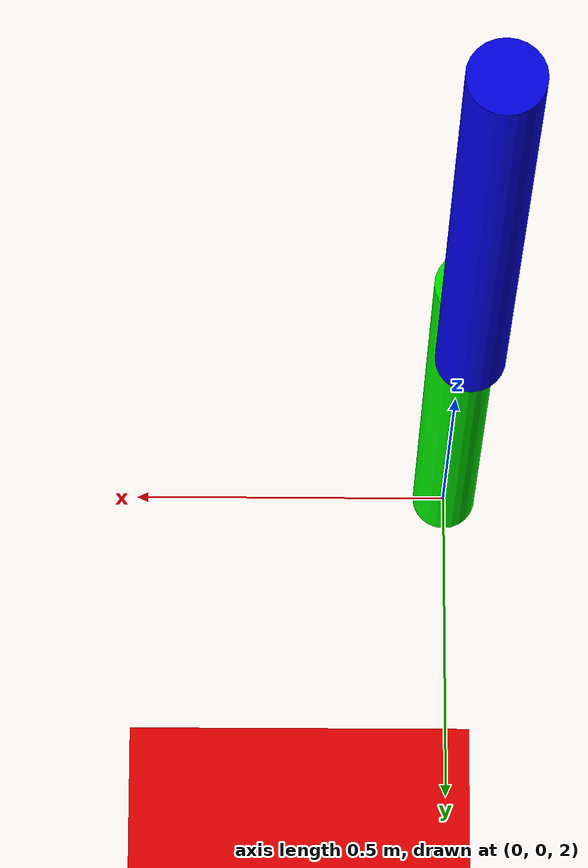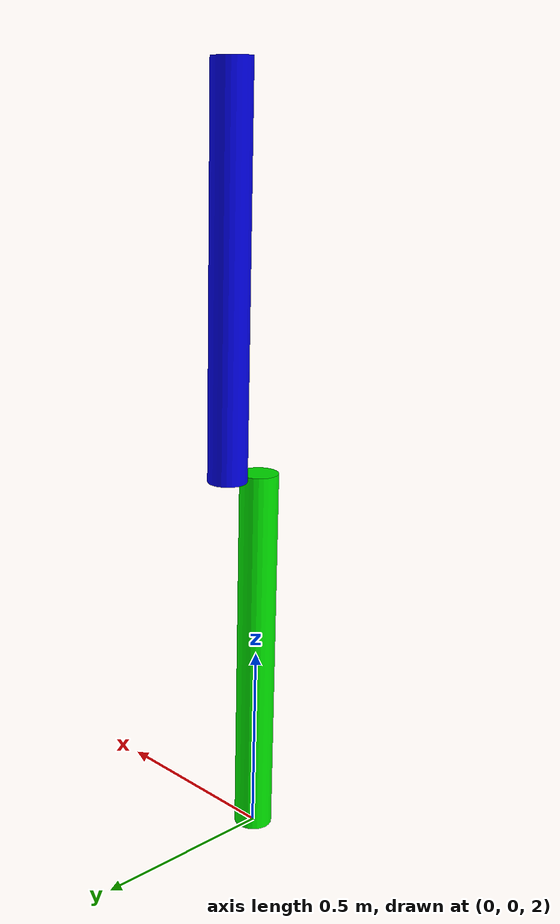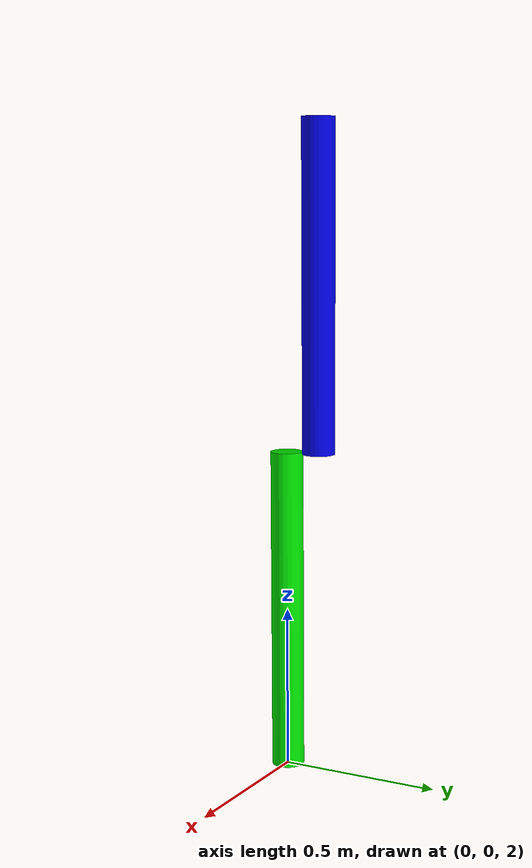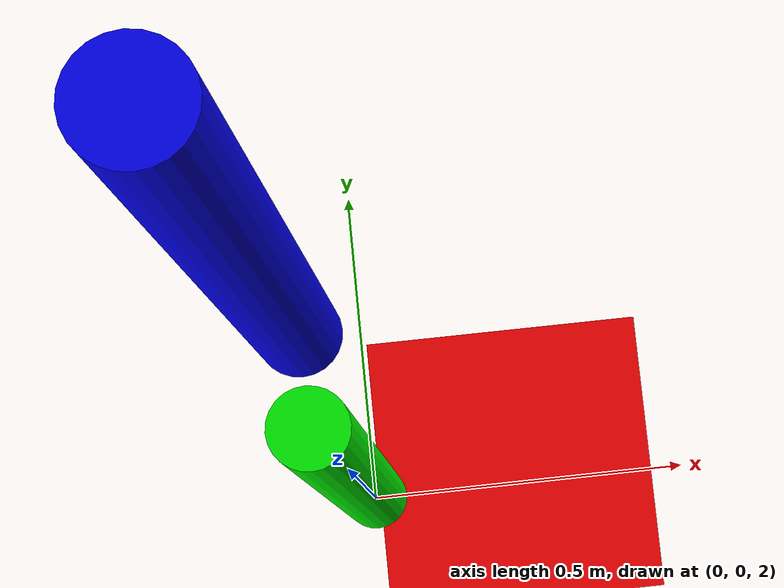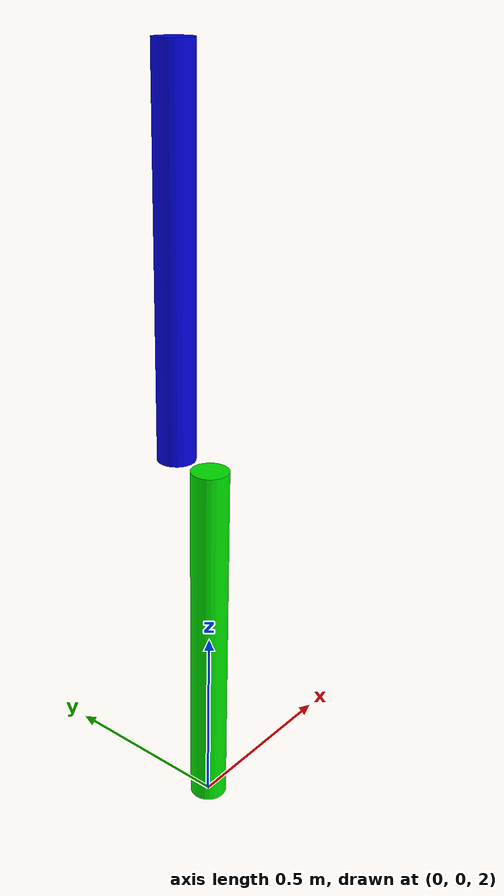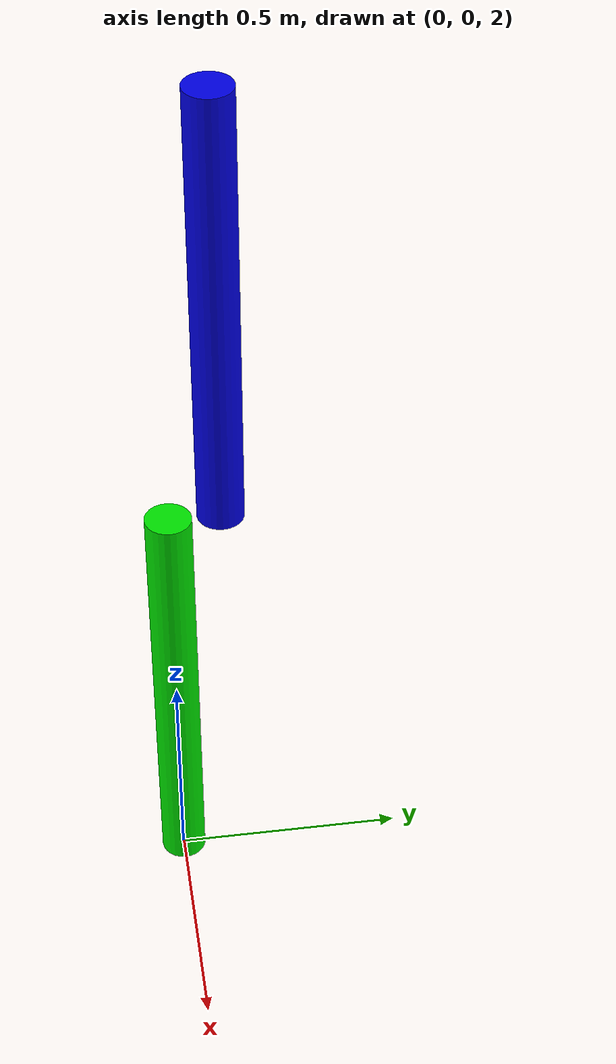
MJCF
<mujoco>
    <option timestep="0.001" integrator="RK4">
            <flag energy="enable" />
    </option>
    <worldbody>
        <light diffuse=".5 .5 .5" pos="0 0 3" dir="0 0 -1"/>
        <geom type="plane" size="1 1 0.1" rgba=".9 0 0 1"/>
        <body pos="0 0 2.5" euler="0 180 0">
            <joint name="pin" type="hinge" axis = "0 -1 0" pos="0 0 0.5"/>
            <geom type="cylinder" size="0.05 0.5" rgba="0 .9 0 1" mass="1"/>
            <body pos="0 0.11 -1" euler="0 0 0">
                <joint name="pin2" type="hinge" axis = "0 -1 0" pos="0 0 0.5"/>
                <geom type="cylinder" size="0.05 0.5" rgba="0 0 .9 1" mass="1"/>
            </body>
        </body>
    </worldbody>
</mujoco>
